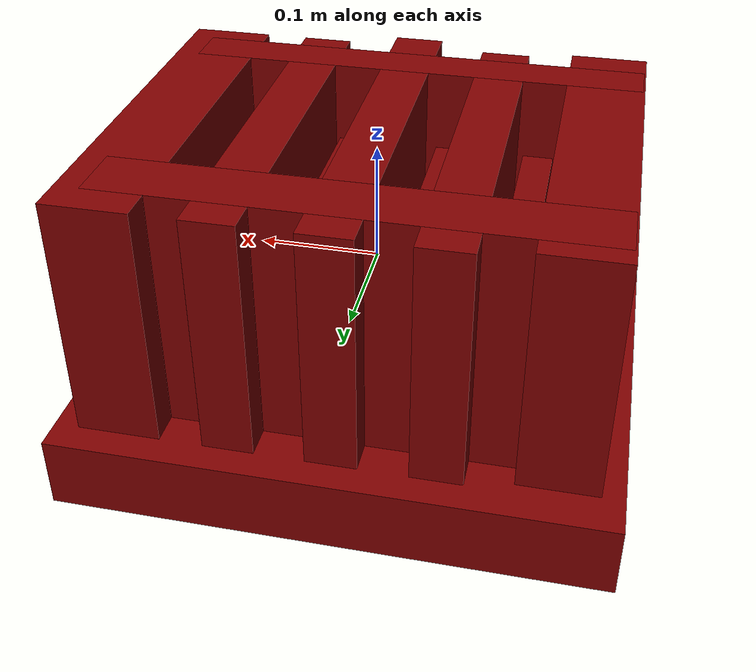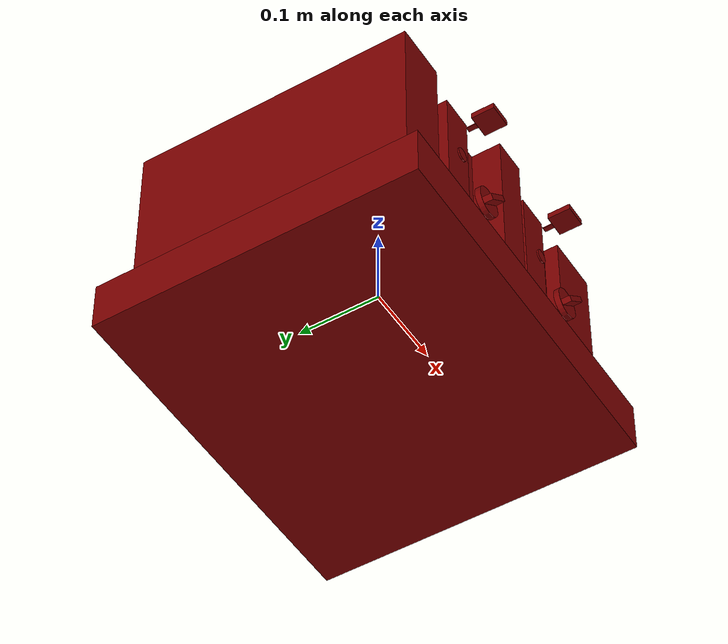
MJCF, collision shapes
<?xml version='1.0' encoding='UTF-8'?>
<mujoco model="model">
  <option timestep="0.002" gravity="0.0 0.0 -9.81"/>
  <compiler angle="radian"/>
  <asset>
    <mesh file="visuals/sideL_button_cancel.obj" name="sideL_button_cancel_vis"/>
    <mesh file="visuals/sideL_knob_doneness.obj" name="sideL_knob_doneness_vis"/>
    <mesh file="visuals/sideL_lever.obj" name="sideL_lever_vis"/>
    <mesh file="visuals/sideR_button_cancel.obj" name="sideR_button_cancel_vis"/>
    <mesh file="visuals/sideR_knob_doneness.obj" name="sideR_knob_doneness_vis"/>
    <mesh file="visuals/sideR_lever.obj" name="sideR_lever_vis"/>
    <mesh file="visuals/Body001.obj" name="Body001_vis"/>
    <mesh file="visuals/Body002.obj" name="Body002_vis"/>
    <texture file="visuals/T_BC001.png" name="Body001_material" type="2d"/>
    <material name="Body001_material" rgba="1 1 1 1.0" texture="Body001_material" shininess="0.2512328028678894" specular="0.3103448502657381"/>
    <texture file="visuals/T_BC001.png" name="sideL_button_cancel_material" type="2d"/>
    <material name="sideL_button_cancel_material" rgba="1 1 1 1.0" texture="sideL_button_cancel_material" shininess="0.2512328028678894" specular="0.3103448502657381"/>
    <texture file="visuals/T_BC001.png" name="sideL_knob_doneness_material" type="2d"/>
    <material name="sideL_knob_doneness_material" rgba="1 1 1 1.0" texture="sideL_knob_doneness_material" shininess="0.2512328028678894" specular="0.3103448502657381"/>
    <texture file="visuals/T_BC001.png" name="sideL_lever_material" type="2d"/>
    <material name="sideL_lever_material" rgba="1 1 1 1.0" texture="sideL_lever_material" shininess="0.2512328028678894" specular="0.3103448502657381"/>
    <texture file="visuals/T_BC001.png" name="sideR_button_cancel_material" type="2d"/>
    <material name="sideR_button_cancel_material" rgba="1 1 1 1.0" texture="sideR_button_cancel_material" shininess="0.2512328028678894" specular="0.3103448502657381"/>
    <texture file="visuals/T_BC001.png" name="sideR_knob_doneness_material" type="2d"/>
    <material name="sideR_knob_doneness_material" rgba="1 1 1 1.0" texture="sideR_knob_doneness_material" shininess="0.2512328028678894" specular="0.3103448502657381"/>
    <texture file="visuals/T_BC001.png" name="sideR_lever_material" type="2d"/>
    <material name="sideR_lever_material" rgba="1 1 1 1.0" texture="sideR_lever_material" shininess="0.2512328028678894" specular="0.3103448502657381"/>
    <texture file="visuals/T_BC001.png" name="Body002_material" type="2d"/>
    <material name="Body002_material" rgba="1 1 1 1.0" texture="Body002_material" shininess="0.2512328028678894" specular="3"/>
  </asset>
  <default>
    <default class="visual">
      <geom conaffinity="0" contype="0" group="1" type="mesh"/>
    </default>
    <default class="collision_1">
      <geom group="0" rgba="0.5 0 0 0.5" solref="0.004 1" solimp="0.998 0.998 0.001"/>
    </default>
    <default class="collision_2">
      <geom group="0" rgba="0.5 0 0 0.5" solref="0.004 1" solimp="0.998 0.998 0.001"/>
    </default>
    <default class="collision_3">
      <geom group="0" rgba="0.5 0 0 0.5" solref="0.004 1" solimp="0.998 0.998 0.001"/>
    </default>
    <default class="collision_4">
      <geom group="0" rgba="0.5 0 0 0.5" solref="0.004 1" solimp="0.998 0.998 0.001"/>
    </default>
    <default class="collision_5">
      <geom group="0" rgba="0.5 0 0 0.5" solref="0.004 1" solimp="0.998 0.998 0.001"/>
    </default>
    <default class="collision_6">
      <geom group="0" rgba="0.5 0 0 0.5" solref="0.004 1" solimp="0.998 0.998 0.001"/>
    </default>
    <default class="collision_7">
      <geom group="0" rgba="0.5 0 0 0.5" solref="0.004 1" solimp="0.998 0.998 0.001"/>
    </default>
    <default class="collision_8">
      <geom group="0" rgba="0.5 0 0 0.5" solref="0.004 1" solimp="0.998 0.998 0.001"/>
    </default>
    <default class="spawn">
      <geom group="0" rgba="1 1 1 0.5" contype="0" conaffinity="0"/>
      <site group="0" rgba="1 1 1 0.5"/>
    </default>
    <default class="region">
      <geom group="1" conaffinity="0" contype="0" rgba="0 1 0 0" mass="0"/>
    </default>
  </default>
  <worldbody>
    <body>
      <body name="object">
        <geom mesh="Body001_vis" type="mesh" solimp="0.998 0.998 0.001" solref="0.001 1" friction="0.95 0.3 0.1" class="visual" material="Body001_material"/>
        <geom type="box" pos="-0.00080407 0.01074358 -0.10637021" size="0.221576988697052 0.19372442364692688 0.03024573251605034" quat="1.0 0.0 0.0 0.0" class="collision_1"/>
        <geom type="box" pos="0.16739151 0.01499934 0.02382080" size="0.03358583524823189 0.16535408794879913 0.10209693014621735" quat="1.0 0.0 0.0 0.0" class="collision_1"/>
        <geom type="box" pos="0.07832012 0.01499934 0.02382080" size="0.020566731691360474 0.16535429656505585 0.1020970344543457" quat="1.0 0.0 0.0 0.0" class="collision_1"/>
        <geom type="box" pos="-0.00289158 0.00593423 0.02382080" size="0.020566759631037712 0.1744196116924286 0.10209714621305466" quat="1.0 0.0 0.0 0.0" class="collision_1"/>
        <geom type="box" pos="-0.08343486 0.01499934 0.02382080" size="0.0205667857080698 0.16535472869873047 0.10209725052118301" quat="1.0 0.0 0.0 0.0" class="collision_1"/>
        <geom type="box" pos="-0.17266747 0.00577068 0.02382080" size="0.03192976862192154 0.1656680852174759 0.10209736227989197" quat="1.0 0.0 0.0 0.0" class="collision_1"/>
        <geom type="box" pos="-0.01085442 -0.11410430 0.02382080" size="0.19233664870262146 0.019172126427292824 0.10209746658802032" quat="1.0 0.0 0.0 0.0" class="collision_1"/>
        <geom type="box" pos="-0.01085441 0.12904407 0.02382080" size="0.19233685731887817 0.02486160770058632 0.10209757834672928" quat="1.0 0.0 0.0 0.0" class="collision_1"/>
        <body name="sideL_button_cancel">
          <joint axis="0.0 1.0 0.0" pos="-0.12473214 -0.17831278 -0.00754315" limited="true" name="sideL_button_cancel_joint" range="0.0 0.001" type="slide" damping="1" frictionloss="1" armature=".01" stiffness="0.05"/>
          <geom mesh="sideL_button_cancel_vis" type="mesh" solimp="0.998 0.998 0.001" solref="0.001 1" friction="0.95 0.3 0.1" class="visual" material="sideL_button_cancel_material"/>
          <geom class="collision_2" type="cylinder" pos="-0.12470192 -0.17793434 -0.00762192" size="0.008015644736588001 0.0008173166424967349" quat="0.7071067094802856 0.7071068286895752 0.0 0.0" name="sideL_button_cancel_main"/>
        </body>
        <body name="sideL_knob_doneness">
          <joint axis="0.0 1.0 0.0" pos="-0.08280912 -0.18501778 -0.04341513" limited="true" name="sideL_knob_doneness_joint" range="0.0 4.71238898038469" type="hinge" damping="0.05" frictionloss="0.1" armature="0.001"/>
          <geom mesh="sideL_knob_doneness_vis" type="mesh" solimp="0.998 0.998 0.001" solref="0.001 1" friction="0.95 0.3 0.1" class="visual" material="sideL_knob_doneness_material"/>
          <geom type="cylinder" pos="-0.08294152 -0.18061775 -0.04357225" size="0.017849130555987358 0.0033068787306547165" quat="0.7071067094802856 0.7071068286895752 0.0 0.0" class="collision_3" density="0.001"/>
          <geom class="collision_3" type="box" pos="-0.08325753 -0.18836682 -0.04392241" size="0.0034406876657158136 0.0062120212242007256 0.01689845696091652" quat="0.9117445945739746 5.8163639140749405e-15 0.41075754165649414 5.5188905889735906e-08" name="sideL_knob_doneness_main" density="0.001"/>
        </body>
        <body name="sideL_lever">
          <joint axis="0.0 0.0 -1.0" pos="-0.08347514 -0.18671015 0.08814980" limited="true" name="sideL_lever_joint" range="0.0 0.06" type="slide" damping="1" frictionloss="1" armature=".01" stiffness="2.7" springref="-0.5"/>
          <geom class="region" name="reg_sideL_slotL" type="box" pos="-0.122325655 0.005290860000000001 0.136253195" size="0.013990335000000002 0.09253358000000001 0.076000095"/>
          <geom class="region" name="reg_sideL_slotR" type="box" pos="-0.04498673 0.005290860000000001 0.136253195" size="0.01353334 0.09253358000000001 0.076000095"/>
          <geom mesh="sideL_lever_vis" type="mesh" solimp="0.998 0.998 0.001" solref="0.001 1" friction="0.95 0.3 0.1" class="visual" material="sideL_lever_material"/>
          <geom class="collision_4" type="box" pos="-0.08377305 -0.18927247 0.08786984" size="0.013937416486442089 0.013543794862926006 0.003780493512749672" quat="1.0 0.0 0.0 0.0" name="sideL_lever_handle"/>
          <geom type="box" pos="-0.08350337 -0.17024602 0.08812094" size="0.002967136912047863 0.0071246628649532795 0.0006690237787552178" quat="1.0 0.0 0.0 0.0" class="collision_4"/>
          <geom class="collision_4" type="box" pos="-0.04638683 0.00467470 0.05872069" size="0.01279352605342865 0.09296071529388428 0.001681678812019527" quat="1.0 0.0 0.0 0.0" name="sideL_slotR_floor"/>
          <geom class="collision_4" type="box" pos="-0.12231033 0.00467470 0.05872069" size="0.01279352605342865 0.09296071529388428 0.0016816764837130904" quat="1.0 0.0 0.0 0.0" name="sideL_slotL_floor"/>
        </body>
        <body name="sideR_button_cancel">
          <joint axis="0.0 1.0 0.0" pos="0.03734161 -0.17782447 -0.00656480" limited="true" name="sideR_button_cancel_joint" range="0.0 0.001" type="slide" damping="1" frictionloss="1" armature=".01" stiffness="0.05"/>
          <geom mesh="sideR_button_cancel_vis" type="mesh" solimp="0.998 0.998 0.001" solref="0.001 1" friction="0.95 0.3 0.1" class="visual" material="sideR_button_cancel_material"/>
          <geom class="collision_5" type="cylinder" pos="0.03736620 -0.17793434 -0.00640581" size="0.007920394651591778 0.0008173166424967349" quat="0.7071067094802856 0.7071068286895752 0.0 0.0" name="sideR_button_cancel_main"/>
        </body>
        <body name="sideR_knob_doneness">
          <joint axis="0.0 1.0 0.0" pos="0.07924784 -0.18501778 -0.04339671" limited="true" name="sideR_knob_doneness_joint" range="0.0 4.71238898038469" type="hinge" damping="0.05" frictionloss="0.1" armature="0.001"/>
          <geom mesh="sideR_knob_doneness_vis" type="mesh" solimp="0.998 0.998 0.001" solref="0.001 1" friction="0.95 0.3 0.1" class="visual" material="sideR_knob_doneness_material"/>
          <geom type="cylinder" pos="0.07894811 -0.18061775 -0.04390829" size="0.017849130555987358 0.0033068787306547165" quat="0.7071067094802856 0.7071068286895752 0.0 0.0" class="collision_6" density="0.001"/>
          <geom class="collision_6" type="box" pos="0.07873432 -0.18836682 -0.04376195" size="0.003220140002667904 0.0062120212242007256 0.016656270250678062" quat="0.9117445945739746 5.8163639140749405e-15 0.41075754165649414 5.5188905889735906e-08" name="sideR_knob_doneness_main" density="0.001"/>
        </body>
        <body name="sideR_lever">
          <joint axis="0.0 0.0 -1.0" pos="0.07859862 -0.18673451 0.08814980" limited="true" name="sideR_lever_joint" range="0.0 0.06" type="slide" damping="1" frictionloss="1" armature=".01" stiffness="2.7" springref="-0.5"/>
          <geom class="region" name="reg_sideR_slotL" type="box" pos="0.03868345 0.005290860000000001 0.136253195" size="0.013755970000000003 0.09253358000000001 0.076000095"/>
          <geom class="region" name="reg_sideR_slotR" type="box" pos="0.116066825 0.005290860000000001 0.13625325" size="0.013255425000000004 0.09253358000000001 0.07600015"/>
          <geom mesh="sideR_lever_vis" type="mesh" solimp="0.998 0.998 0.001" solref="0.001 1" friction="0.95 0.3 0.1" class="visual" material="sideR_lever_material"/>
          <geom class="collision_7" type="box" pos="0.07772019 -0.18927247 0.08837276" size="0.013392494060099125 0.013543762266635895 0.003780476516112685" quat="1.0 0.0 0.0 0.0" name="sideR_lever_handle"/>
          <geom type="box" pos="0.07869392 -0.17024602 0.08816955" size="0.002967136912047863 0.007124652620404959 0.0006607293034903705" quat="1.0 0.0 0.0 0.0" class="collision_7"/>
          <geom class="collision_7" type="box" pos="0.11570306 0.00467470 0.05872069" size="0.01279352605342865 0.09296071529388428 0.001681674038991332" quat="1.0 0.0 0.0 0.0" name="sideR_slotR_floor"/>
          <geom class="collision_7" type="box" pos="0.03977957 0.00467470 0.05872069" size="0.01279352605342865 0.09296071529388428 0.0016816715942695737" quat="1.0 0.0 0.0 0.0" name="sideR_slotL_floor"/>
        </body>
        <body name="Body002">
          <geom mesh="Body002_vis" type="mesh" solimp="0.998 0.998 0.001" solref="0.001 1" friction="0.95 0.3 0.1" class="visual" material="Body002_material"/>
        </body>
        <geom class="region" name="reg_main" type="box" pos="0.0 0.013977315000000004 0.0" size="0.22711016 0.193945555 0.13761642"/>
      </body>
    </body>
  </worldbody>
  <actuator>
    <motor name="sideL_button_cancel_joint_actuator" joint="sideL_button_cancel_joint" gear="0.5"/>
    <motor name="sideL_knob_doneness_joint_actuator" joint="sideL_knob_doneness_joint" gear="10"/>
    <motor name="sideL_lever_joint_actuator" joint="sideL_lever_joint" gear="5"/>
    <motor name="sideR_button_cancel_joint_actuator" joint="sideR_button_cancel_joint" gear="0.5"/>
    <motor name="sideR_knob_doneness_joint_actuator" joint="sideR_knob_doneness_joint" gear="10"/>
    <motor name="sideR_lever_joint_actuator" joint="sideR_lever_joint" gear="5"/>
  </actuator>
</mujoco>
